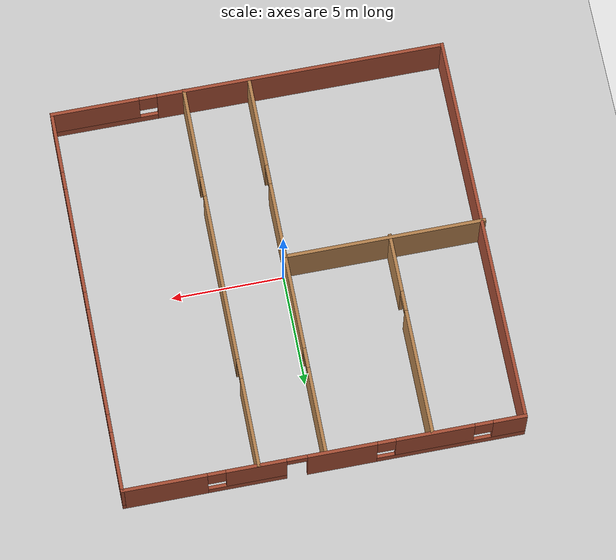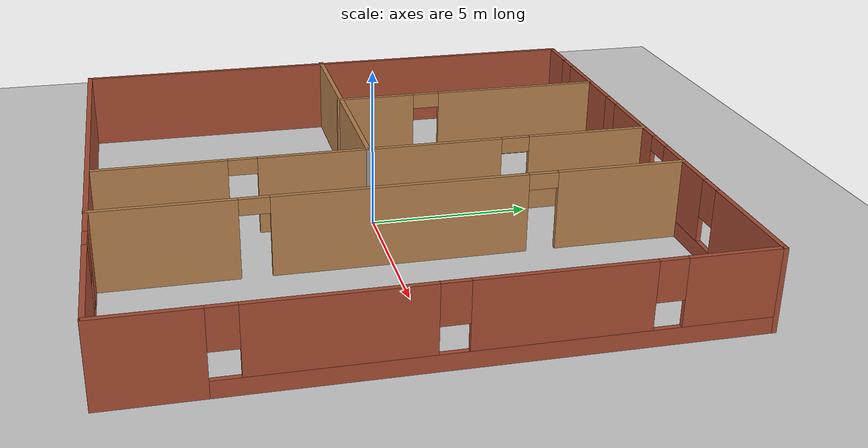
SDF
<sdf version="1.7">
 <world name="default">
  <light name="sun" type="directional">
   <pose>0 0 10 0 -0 0</pose>
   <diffuse>0.8 0.8 0.8 1</diffuse>
   <specular>0.2 0.2 0.2 1</specular>
   <attenuation>
    <range>1000</range>
    <constant>0.9</constant>
    <linear>0.01</linear>
    <quadratic>0.001</quadratic>
   </attenuation>
   <direction>-0.5 0.1 -0.9</direction>
   <spot><inner_angle>0</inner_angle><outer_angle>0</outer_angle><falloff>0</falloff></spot>
  </light>
  <model name="ground_plane">
   <static>1</static>
   <link name="link">
    <collision name="collision">
     <geometry><plane><normal>0 0 1</normal><size>100 100</size></plane></geometry>
     <surface>
      <contact><collide_bitmask>65535</collide_bitmask></contact>
      <friction><ode><mu>100</mu><mu2>50</mu2></ode></friction>
     </surface>
    </collision>
    <visual name="visual">
     <cast_shadows>0</cast_shadows>
     <geometry><plane><normal>0 0 1</normal><size>100 100</size></plane></geometry>
     <material>
      <script><uri>file://media/materials/scripts/gazebo.material</uri><name>Gazebo/Grey</name></script>
     </material>
    </visual>
   </link>
  </model>
  <gravity>0 0 -9.8</gravity>
  <magnetic_field>6e-06 2.3e-05 -4.2e-05</magnetic_field>
  <atmosphere type="adiabatic"/>
  <physics type="ode">
   <max_step_size>0.001</max_step_size>
   <real_time_factor>1</real_time_factor>
   <real_time_update_rate>1000</real_time_update_rate>
  </physics>
  <scene><ambient>0.4 0.4 0.4 1</ambient><background>0.7 0.7 0.7 1</background><shadows>1</shadows></scene>
  <audio><device>default</device></audio>
  <spherical_coordinates>
   <surface_model>EARTH_WGS84</surface_model>
   <latitude_deg>0</latitude_deg>
   <longitude_deg>0</longitude_deg>
   <elevation>0</elevation>
   <heading_deg>0</heading_deg>
  </spherical_coordinates>
  <model name="hospital.world">
   <pose>-0.112313 0.18349 0 0 -0 0</pose>
   <link name="Wall_24">
    <pose>0.054411 -8.79519 0 0 -0 0</pose>
    <visual name="Wall_24_Visual_0">
     <pose>-2.39053 0 1.25 0 -0 0</pose>
     <geometry><box><size>12.9689 0.15 2.5</size></box></geometry>
     <material>
      <script><uri>file://media/materials/scripts/gazebo.material</uri><name>Gazebo/Bricks</name></script>
      <ambient>1 1 1 1</ambient>
     </material>
     <meta><layer>0</layer></meta>
    </visual>
    <collision name="Wall_24_Collision_0">
     <geometry><box><size>12.9689 0.15 2.5</size></box></geometry>
     <pose>-2.39053 0 1.25 0 -0 0</pose>
    </collision>
    <visual name="Wall_24_Visual_1">
     <pose>6.48447 0 0.25 0 -0 0</pose>
     <geometry><box><size>4.78105 0.15 0.5</size></box></geometry>
     <material>
      <script><uri>file://media/materials/scripts/gazebo.material</uri><name>Gazebo/Bricks</name></script>
      <ambient>1 1 1 1</ambient>
     </material>
     <meta><layer>0</layer></meta>
    </visual>
    <collision name="Wall_24_Collision_1">
     <geometry><box><size>4.78105 0.15 0.5</size></box></geometry>
     <pose>6.48447 0 0.25 0 -0 0</pose>
    </collision>
    <visual name="Wall_24_Visual_2">
     <pose>6.88447 0 1.5 0 -0 0</pose>
     <geometry><box><size>3.98105 0.15 2</size></box></geometry>
     <material>
      <script><uri>file://media/materials/scripts/gazebo.material</uri><name>Gazebo/Bricks</name></script>
      <ambient>1 1 1 1</ambient>
     </material>
     <meta><layer>0</layer></meta>
    </visual>
    <collision name="Wall_24_Collision_2">
     <geometry><box><size>3.98105 0.15 2</size></box></geometry>
     <pose>6.88447 0 1.5 0 -0 0</pose>
    </collision>
    <visual name="Wall_24_Visual_3">
     <pose>4.49395 0 1.9 0 -0 0</pose>
     <geometry><box><size>0.8 0.15 1.2</size></box></geometry>
     <material>
      <script><uri>file://media/materials/scripts/gazebo.material</uri><name>Gazebo/Bricks</name></script>
      <ambient>1 1 1 1</ambient>
     </material>
     <meta><layer>0</layer></meta>
    </visual>
    <collision name="Wall_24_Collision_3">
     <geometry><box><size>0.8 0.15 1.2</size></box></geometry>
     <pose>4.49395 0 1.9 0 -0 0</pose>
    </collision>
   </link>
   <link name="Wall_26">
    <pose>8.85441 0.004805 0 0 -0 1.5708</pose>
    <visual name="Wall_26_Visual_0">
     <pose>-7.44868 0 1.25 0 -0 0</pose>
     <geometry><box><size>2.85263 0.15 2.5</size></box></geometry>
     <material>
      <script><uri>file://media/materials/scripts/gazebo.material</uri><name>Gazebo/Bricks</name></script>
      <ambient>1 1 1 1</ambient>
     </material>
     <meta><layer>0</layer></meta>
    </visual>
    <collision name="Wall_26_Collision_0">
     <geometry><box><size>2.85263 0.15 2.5</size></box></geometry>
     <pose>-7.44868 0 1.25 0 -0 0</pose>
    </collision>
    <visual name="Wall_26_Visual_1">
     <pose>1.42632 0 0.25 0 -0 0</pose>
     <geometry><box><size>14.8974 0.15 0.5</size></box></geometry>
     <material>
      <script><uri>file://media/materials/scripts/gazebo.material</uri><name>Gazebo/Bricks</name></script>
      <ambient>1 1 1 1</ambient>
     </material>
     <meta><layer>0</layer></meta>
    </visual>
    <collision name="Wall_26_Collision_1">
     <geometry><box><size>14.8974 0.15 0.5</size></box></geometry>
     <pose>1.42632 0 0.25 0 -0 0</pose>
    </collision>
    <visual name="Wall_26_Visual_2">
     <pose>-2.7819 0 1.5 0 -0 0</pose>
     <geometry><box><size>4.88094 0.15 2</size></box></geometry>
     <material>
      <script><uri>file://media/materials/scripts/gazebo.material</uri><name>Gazebo/Bricks</name></script>
      <ambient>1 1 1 1</ambient>
     </material>
     <meta><layer>0</layer></meta>
    </visual>
    <collision name="Wall_26_Collision_2">
     <geometry><box><size>4.88094 0.15 2</size></box></geometry>
     <pose>-2.7819 0 1.5 0 -0 0</pose>
    </collision>
    <visual name="Wall_26_Visual_3">
     <pose>2.89904 0 1.5 0 -0 0</pose>
     <geometry><box><size>4.88094 0.15 2</size></box></geometry>
     <material>
      <script><uri>file://media/materials/scripts/gazebo.material</uri><name>Gazebo/Bricks</name></script>
      <ambient>1 1 1 1</ambient>
     </material>
     <meta><layer>0</layer></meta>
    </visual>
    <collision name="Wall_26_Collision_3">
     <geometry><box><size>4.88094 0.15 2</size></box></geometry>
     <pose>2.89904 0 1.5 0 -0 0</pose>
    </collision>
    <visual name="Wall_26_Visual_4">
     <pose>7.50726 0 1.5 0 -0 0</pose>
     <geometry><box><size>2.73549 0.15 2</size></box></geometry>
     <material>
      <script><uri>file://media/materials/scripts/gazebo.material</uri><name>Gazebo/Bricks</name></script>
      <ambient>1 1 1 1</ambient>
     </material>
     <meta><layer>0</layer></meta>
    </visual>
    <collision name="Wall_26_Collision_4">
     <geometry><box><size>2.73549 0.15 2</size></box></geometry>
     <pose>7.50726 0 1.5 0 -0 0</pose>
    </collision>
    <visual name="Wall_26_Visual_5">
     <pose>-5.62237 0 1.9 0 -0 0</pose>
     <geometry><box><size>0.8 0.15 1.2</size></box></geometry>
     <material>
      <script><uri>file://media/materials/scripts/gazebo.material</uri><name>Gazebo/Bricks</name></script>
      <ambient>1 1 1 1</ambient>
     </material>
     <meta><layer>0</layer></meta>
    </visual>
    <collision name="Wall_26_Collision_5">
     <geometry><box><size>0.8 0.15 1.2</size></box></geometry>
     <pose>-5.62237 0 1.9 0 -0 0</pose>
    </collision>
    <visual name="Wall_26_Visual_6">
     <pose>0.058573 0 1.9 0 -0 0</pose>
     <geometry><box><size>0.8 0.15 1.2</size></box></geometry>
     <material>
      <script><uri>file://media/materials/scripts/gazebo.material</uri><name>Gazebo/Bricks</name></script>
      <ambient>1 1 1 1</ambient>
     </material>
     <meta><layer>0</layer></meta>
    </visual>
    <collision name="Wall_26_Collision_6">
     <geometry><box><size>0.8 0.15 1.2</size></box></geometry>
     <pose>0.058573 0 1.9 0 -0 0</pose>
    </collision>
    <visual name="Wall_26_Visual_7">
     <pose>5.73951 0 1.9 0 -0 0</pose>
     <geometry><box><size>0.8 0.15 1.2</size></box></geometry>
     <material>
      <script><uri>file://media/materials/scripts/gazebo.material</uri><name>Gazebo/Bricks</name></script>
      <ambient>1 1 1 1</ambient>
     </material>
     <meta><layer>0</layer></meta>
    </visual>
    <collision name="Wall_26_Collision_7">
     <geometry><box><size>0.8 0.15 1.2</size></box></geometry>
     <pose>5.73951 0 1.9 0 -0 0</pose>
    </collision>
   </link>
   <link name="Wall_27">
    <pose>0.054411 8.80481 0 0 -0 3.14159</pose>
    <visual name="Wall_27_Visual_0">
     <pose>-6.98968 0 1.25 0 -0 0</pose>
     <geometry><box><size>3.77065 0.15 2.5</size></box></geometry>
     <material>
      <script><uri>file://media/materials/scripts/gazebo.material</uri><name>Gazebo/Bricks</name></script>
      <ambient>1 1 1 1</ambient>
     </material>
     <meta><layer>0</layer></meta>
    </visual>
    <collision name="Wall_27_Collision_0">
     <geometry><box><size>3.77065 0.15 2.5</size></box></geometry>
     <pose>-6.98968 0 1.25 0 -0 0</pose>
    </collision>
    <visual name="Wall_27_Visual_1">
     <pose>0.779218 0 1.25 0 -0 0</pose>
     <geometry><box><size>3.06643 0.15 2.5</size></box></geometry>
     <material>
      <script><uri>file://media/materials/scripts/gazebo.material</uri><name>Gazebo/Bricks</name></script>
      <ambient>1 1 1 1</ambient>
     </material>
     <meta><layer>0</layer></meta>
    </visual>
    <collision name="Wall_27_Collision_1">
     <geometry><box><size>3.06643 0.15 2.5</size></box></geometry>
     <pose>0.779218 0 1.25 0 -0 0</pose>
    </collision>
    <visual name="Wall_27_Visual_2">
     <pose>-3.37917 0 0.25 0 -0 0</pose>
     <geometry><box><size>3.45036 0.15 0.5</size></box></geometry>
     <material>
      <script><uri>file://media/materials/scripts/gazebo.material</uri><name>Gazebo/Bricks</name></script>
      <ambient>1 1 1 1</ambient>
     </material>
     <meta><layer>0</layer></meta>
    </visual>
    <collision name="Wall_27_Collision_2">
     <geometry><box><size>3.45036 0.15 0.5</size></box></geometry>
     <pose>-3.37917 0 0.25 0 -0 0</pose>
    </collision>
    <visual name="Wall_27_Visual_3">
     <pose>5.59372 0 0.25 0 -0 0</pose>
     <geometry><box><size>6.56257 0.15 0.5</size></box></geometry>
     <material>
      <script><uri>file://media/materials/scripts/gazebo.material</uri><name>Gazebo/Bricks</name></script>
      <ambient>1 1 1 1</ambient>
     </material>
     <meta><layer>0</layer></meta>
    </visual>
    <collision name="Wall_27_Collision_3">
     <geometry><box><size>6.56257 0.15 0.5</size></box></geometry>
     <pose>5.59372 0 0.25 0 -0 0</pose>
    </collision>
    <visual name="Wall_27_Visual_4">
     <pose>-2.97917 0 1.5 0 -0 0</pose>
     <geometry><box><size>2.65035 0.15 2</size></box></geometry>
     <material>
      <script><uri>file://media/materials/scripts/gazebo.material</uri><name>Gazebo/Bricks</name></script>
      <ambient>1 1 1 1</ambient>
     </material>
     <meta><layer>0</layer></meta>
    </visual>
    <collision name="Wall_27_Collision_4">
     <geometry><box><size>2.65035 0.15 2</size></box></geometry>
     <pose>-2.97917 0 1.5 0 -0 0</pose>
    </collision>
    <visual name="Wall_27_Visual_5">
     <pose>-2.97917 0 1.5 0 -0 0</pose>
     <geometry><box><size>2.65035 0.15 2</size></box></geometry>
     <material>
      <script><uri>file://media/materials/scripts/gazebo.material</uri><name>Gazebo/Bricks</name></script>
      <ambient>1 1 1 1</ambient>
     </material>
     <meta><layer>0</layer></meta>
    </visual>
    <collision name="Wall_27_Collision_5">
     <geometry><box><size>2.65035 0.15 2</size></box></geometry>
     <pose>-2.97917 0 1.5 0 -0 0</pose>
    </collision>
    <visual name="Wall_27_Visual_6">
     <pose>4.84278 0 1.5 0 -0 0</pose>
     <geometry><box><size>3.4607 0.15 2</size></box></geometry>
     <material>
      <script><uri>file://media/materials/scripts/gazebo.material</uri><name>Gazebo/Bricks</name></script>
      <ambient>1 1 1 1</ambient>
     </material>
     <meta><layer>0</layer></meta>
    </visual>
    <collision name="Wall_27_Collision_6">
     <geometry><box><size>3.4607 0.15 2</size></box></geometry>
     <pose>4.84278 0 1.5 0 -0 0</pose>
    </collision>
    <visual name="Wall_27_Visual_7">
     <pose>8.12407 0 1.5 0 -0 0</pose>
     <geometry><box><size>1.50186 0.15 2</size></box></geometry>
     <material>
      <script><uri>file://media/materials/scripts/gazebo.material</uri><name>Gazebo/Bricks</name></script>
      <ambient>1 1 1 1</ambient>
     </material>
     <meta><layer>0</layer></meta>
    </visual>
    <collision name="Wall_27_Collision_7">
     <geometry><box><size>1.50186 0.15 2</size></box></geometry>
     <pose>8.12407 0 1.5 0 -0 0</pose>
    </collision>
    <visual name="Wall_27_Visual_8">
     <pose>-4.70435 0 1.9 0 -0 0</pose>
     <geometry><box><size>0.8 0.15 1.2</size></box></geometry>
     <material>
      <script><uri>file://media/materials/scripts/gazebo.material</uri><name>Gazebo/Bricks</name></script>
      <ambient>1 1 1 1</ambient>
     </material>
     <meta><layer>0</layer></meta>
    </visual>
    <collision name="Wall_27_Collision_8">
     <geometry><box><size>0.8 0.15 1.2</size></box></geometry>
     <pose>-4.70435 0 1.9 0 -0 0</pose>
    </collision>
    <visual name="Wall_27_Visual_9">
     <pose>2.71243 0 1.9 0 -0 0</pose>
     <geometry><box><size>0.8 0.15 1.2</size></box></geometry>
     <material>
      <script><uri>file://media/materials/scripts/gazebo.material</uri><name>Gazebo/Bricks</name></script>
      <ambient>1 1 1 1</ambient>
     </material>
     <meta><layer>0</layer></meta>
    </visual>
    <collision name="Wall_27_Collision_9">
     <geometry><box><size>0.8 0.15 1.2</size></box></geometry>
     <pose>2.71243 0 1.9 0 -0 0</pose>
    </collision>
    <visual name="Wall_27_Visual_10">
     <pose>6.97314 0 1.9 0 -0 0</pose>
     <geometry><box><size>0.8 0.15 1.2</size></box></geometry>
     <material>
      <script><uri>file://media/materials/scripts/gazebo.material</uri><name>Gazebo/Bricks</name></script>
      <ambient>1 1 1 1</ambient>
     </material>
     <meta><layer>0</layer></meta>
    </visual>
    <collision name="Wall_27_Collision_10">
     <geometry><box><size>0.8 0.15 1.2</size></box></geometry>
     <pose>6.97314 0 1.9 0 -0 0</pose>
    </collision>
    <visual name="Wall_27_Visual_11">
     <pose>-1.204 0 2.25 0 -0 0</pose>
     <geometry><box><size>0.9 0.15 0.5</size></box></geometry>
     <material>
      <script><uri>file://media/materials/scripts/gazebo.material</uri><name>Gazebo/Bricks</name></script>
      <ambient>1 1 1 1</ambient>
     </material>
     <meta><layer>0</layer></meta>
    </visual>
    <collision name="Wall_27_Collision_11">
     <geometry><box><size>0.9 0.15 0.5</size></box></geometry>
     <pose>-1.204 0 2.25 0 -0 0</pose>
    </collision>
    <visual name="Wall_27_Visual_12">
     <pose>-1.204 0 2.25 0 -0 0</pose>
     <geometry><box><size>0.9 0.15 0.5</size></box></geometry>
     <material>
      <script><uri>file://media/materials/scripts/gazebo.material</uri><name>Gazebo/Bricks</name></script>
      <ambient>1 1 1 1</ambient>
     </material>
     <meta><layer>0</layer></meta>
    </visual>
    <collision name="Wall_27_Collision_12">
     <geometry><box><size>0.9 0.15 0.5</size></box></geometry>
     <pose>-1.204 0 2.25 0 -0 0</pose>
    </collision>
   </link>
   <link name="Wall_28">
    <collision name="Wall_28_Collision">
     <geometry><box><size>17.75 0.15 2.5</size></box></geometry>
     <pose>0 0 1.25 0 -0 0</pose>
    </collision>
    <visual name="Wall_28_Visual">
     <pose>0 0 1.25 0 -0 0</pose>
     <geometry><box><size>17.75 0.15 2.5</size></box></geometry>
     <material>
      <script><uri>file://media/materials/scripts/gazebo.material</uri><name>Gazebo/Bricks</name></script>
      <ambient>1 1 1 1</ambient>
     </material>
     <meta><layer>0</layer></meta>
    </visual>
    <pose>-8.74559 0.004805 0 0 -0 -1.5708</pose>
   </link>
   <link name="Wall_30">
    <collision name="Wall_30_Collision">
     <geometry><box><size>9 0.15 2.5</size></box></geometry>
     <pose>0 0 1.25 0 -0 0</pose>
    </collision>
    <visual name="Wall_30_Visual">
     <pose>0 0 1.25 0 -0 0</pose>
     <geometry><box><size>9 0.15 2.5</size></box></geometry>
     <material>
      <script><uri>file://media/materials/scripts/gazebo.material</uri><name>Gazebo/Wood</name></script>
      <ambient>1 1 1 1</ambient>
     </material>
     <meta><layer>0</layer></meta>
    </visual>
    <pose>-4.42941 -0.304217 0 0 -0 0</pose>
   </link>
   <link name="Wall_31">
    <collision name="Wall_31_Collision">
     <geometry><box><size>0.16 0.15 2.5</size></box></geometry>
     <pose>0 0 1.25 0 -0 0</pose>
    </collision>
    <visual name="Wall_31_Visual">
     <pose>0 0 1.25 0 -0 0</pose>
     <geometry><box><size>0.16 0.15 2.5</size></box></geometry>
     <material>
      <script><uri>file://media/materials/scripts/gazebo.material</uri><name>Gazebo/Grey</name></script>
      <ambient>1 1 1 1</ambient>
     </material>
     <meta><layer>0</layer></meta>
    </visual>
    <pose>0.000588 -0.304217 0 0 -0 0</pose>
   </link>
   <link name="Wall_33">
    <pose>-0.004412 4.24578 0 0 -0 1.5708</pose>
    <visual name="Wall_33_Visual_0">
     <pose>-2.43841 0 1.25 0 -0 0</pose>
     <geometry><box><size>4.37319 0.15 2.5</size></box></geometry>
     <material>
      <script><uri>file://media/materials/scripts/gazebo.material</uri><name>Gazebo/Wood</name></script>
      <ambient>1 1 1 1</ambient>
     </material>
     <meta><layer>0</layer></meta>
    </visual>
    <collision name="Wall_33_Collision_0">
     <geometry><box><size>4.37319 0.15 2.5</size></box></geometry>
     <pose>-2.43841 0 1.25 0 -0 0</pose>
    </collision>
    <visual name="Wall_33_Visual_1">
     <pose>2.63659 0 1.25 0 -0 0</pose>
     <geometry><box><size>3.97681 0.15 2.5</size></box></geometry>
     <material>
      <script><uri>file://media/materials/scripts/gazebo.material</uri><name>Gazebo/Wood</name></script>
      <ambient>1 1 1 1</ambient>
     </material>
     <meta><layer>0</layer></meta>
    </visual>
    <collision name="Wall_33_Collision_1">
     <geometry><box><size>3.97681 0.15 2.5</size></box></geometry>
     <pose>2.63659 0 1.25 0 -0 0</pose>
    </collision>
    <visual name="Wall_33_Visual_2">
     <pose>0.198186 0 2.25 0 -0 0</pose>
     <geometry><box><size>0.9 0.15 0.5</size></box></geometry>
     <material>
      <script><uri>file://media/materials/scripts/gazebo.material</uri><name>Gazebo/Wood</name></script>
      <ambient>1 1 1 1</ambient>
     </material>
     <meta><layer>0</layer></meta>
    </visual>
    <collision name="Wall_33_Collision_2">
     <geometry><box><size>0.9 0.15 0.5</size></box></geometry>
     <pose>0.198186 0 2.25 0 -0 0</pose>
    </collision>
   </link>
   <link name="Wall_37">
    <pose>-4.66875 4.17837 0 0 -0 1.5708</pose>
    <visual name="Wall_37_Visual_0">
     <pose>-3.2826 0 1.25 0 -0 0</pose>
     <geometry><box><size>2.6848 0.15 2.5</size></box></geometry>
     <material>
      <script><uri>file://media/materials/scripts/gazebo.material</uri><name>Gazebo/Wood</name></script>
      <ambient>1 1 1 1</ambient>
     </material>
     <meta><layer>0</layer></meta>
    </visual>
    <collision name="Wall_37_Collision_0">
     <geometry><box><size>2.6848 0.15 2.5</size></box></geometry>
     <pose>-3.2826 0 1.25 0 -0 0</pose>
    </collision>
    <visual name="Wall_37_Visual_1">
     <pose>1.7924 0 1.25 0 -0 0</pose>
     <geometry><box><size>5.6652 0.15 2.5</size></box></geometry>
     <material>
      <script><uri>file://media/materials/scripts/gazebo.material</uri><name>Gazebo/Wood</name></script>
      <ambient>1 1 1 1</ambient>
     </material>
     <meta><layer>0</layer></meta>
    </visual>
    <collision name="Wall_37_Collision_1">
     <geometry><box><size>5.6652 0.15 2.5</size></box></geometry>
     <pose>1.7924 0 1.25 0 -0 0</pose>
    </collision>
    <visual name="Wall_37_Visual_2">
     <pose>-1.4902 0 2.25 0 -0 0</pose>
     <geometry><box><size>0.9 0.15 0.5</size></box></geometry>
     <material>
      <script><uri>file://media/materials/scripts/gazebo.material</uri><name>Gazebo/Wood</name></script>
      <ambient>1 1 1 1</ambient>
     </material>
     <meta><layer>0</layer></meta>
    </visual>
    <collision name="Wall_37_Collision_2">
     <geometry><box><size>0.9 0.15 0.5</size></box></geometry>
     <pose>-1.4902 0 2.25 0 -0 0</pose>
    </collision>
   </link>
   <link name="Wall_39">
    <pose>-0.004412 -4.47922 0 0 -0 -1.5708</pose>
    <visual name="Wall_39_Visual_0">
     <pose>-2.49094 0 1.25 0 -0 0</pose>
     <geometry><box><size>3.51811 0.15 2.5</size></box></geometry>
     <material>
      <script><uri>file://media/materials/scripts/gazebo.material</uri><name>Gazebo/Wood</name></script>
      <ambient>1 1 1 1</ambient>
     </material>
     <meta><layer>0</layer></meta>
    </visual>
    <collision name="Wall_39_Collision_0">
     <geometry><box><size>3.51811 0.15 2.5</size></box></geometry>
     <pose>-2.49094 0 1.25 0 -0 0</pose>
    </collision>
    <visual name="Wall_39_Visual_1">
     <pose>2.20906 0 1.25 0 -0 0</pose>
     <geometry><box><size>4.08189 0.15 2.5</size></box></geometry>
     <material>
      <script><uri>file://media/materials/scripts/gazebo.material</uri><name>Gazebo/Wood</name></script>
      <ambient>1 1 1 1</ambient>
     </material>
     <meta><layer>0</layer></meta>
    </visual>
    <collision name="Wall_39_Collision_1">
     <geometry><box><size>4.08189 0.15 2.5</size></box></geometry>
     <pose>2.20906 0 1.25 0 -0 0</pose>
    </collision>
    <visual name="Wall_39_Visual_2">
     <pose>-0.281891 0 2.25 0 -0 0</pose>
     <geometry><box><size>0.9 0.15 0.5</size></box></geometry>
     <material>
      <script><uri>file://media/materials/scripts/gazebo.material</uri><name>Gazebo/Wood</name></script>
      <ambient>1 1 1 1</ambient>
     </material>
     <meta><layer>0</layer></meta>
    </visual>
    <collision name="Wall_39_Collision_2">
     <geometry><box><size>0.9 0.15 0.5</size></box></geometry>
     <pose>-0.281891 0 2.25 0 -0 0</pose>
    </collision>
   </link>
   <link name="Wall_41">
    <pose>2.91772 -0.004806 0 0 -0 -1.5708</pose>
    <visual name="Wall_41_Visual_0">
     <pose>-6.85325 0 1.25 0 -0 0</pose>
     <geometry><box><size>4.04351 0.15 2.5</size></box></geometry>
     <material>
      <script><uri>file://media/materials/scripts/gazebo.material</uri><name>Gazebo/Wood</name></script>
      <ambient>1 1 1 1</ambient>
     </material>
     <meta><layer>0</layer></meta>
    </visual>
    <collision name="Wall_41_Collision_0">
     <geometry><box><size>4.04351 0.15 2.5</size></box></geometry>
     <pose>-6.85325 0 1.25 0 -0 0</pose>
    </collision>
    <visual name="Wall_41_Visual_1">
     <pose>-0.102208 0 1.25 0 -0 0</pose>
     <geometry><box><size>7.65856 0.15 2.5</size></box></geometry>
     <material>
      <script><uri>file://media/materials/scripts/gazebo.material</uri><name>Gazebo/Wood</name></script>
      <ambient>1 1 1 1</ambient>
     </material>
     <meta><layer>0</layer></meta>
    </visual>
    <collision name="Wall_41_Collision_1">
     <geometry><box><size>7.65856 0.15 2.5</size></box></geometry>
     <pose>-0.102208 0 1.25 0 -0 0</pose>
    </collision>
    <visual name="Wall_41_Visual_2">
     <pose>6.75104 0 1.25 0 -0 0</pose>
     <geometry><box><size>4.24793 0.15 2.5</size></box></geometry>
     <material>
      <script><uri>file://media/materials/scripts/gazebo.material</uri><name>Gazebo/Wood</name></script>
      <ambient>1 1 1 1</ambient>
     </material>
     <meta><layer>0</layer></meta>
    </visual>
    <collision name="Wall_41_Collision_2">
     <geometry><box><size>4.24793 0.15 2.5</size></box></geometry>
     <pose>6.75104 0 1.25 0 -0 0</pose>
    </collision>
    <visual name="Wall_41_Visual_3">
     <pose>-4.38149 0 2.25 0 -0 0</pose>
     <geometry><box><size>0.9 0.15 0.5</size></box></geometry>
     <material>
      <script><uri>file://media/materials/scripts/gazebo.material</uri><name>Gazebo/Wood</name></script>
      <ambient>1 1 1 1</ambient>
     </material>
     <meta><layer>0</layer></meta>
    </visual>
    <collision name="Wall_41_Collision_3">
     <geometry><box><size>0.9 0.15 0.5</size></box></geometry>
     <pose>-4.38149 0 2.25 0 -0 0</pose>
    </collision>
    <visual name="Wall_41_Visual_4">
     <pose>4.17707 0 2.25 0 -0 0</pose>
     <geometry><box><size>0.9 0.15 0.5</size></box></geometry>
     <material>
      <script><uri>file://media/materials/scripts/gazebo.material</uri><name>Gazebo/Wood</name></script>
      <ambient>1 1 1 1</ambient>
     </material>
     <meta><layer>0</layer></meta>
    </visual>
    <collision name="Wall_41_Collision_4">
     <geometry><box><size>0.9 0.15 0.5</size></box></geometry>
     <pose>4.17707 0 2.25 0 -0 0</pose>
    </collision>
   </link>
   <static>1</static>
  </model>
 </world>
</sdf>
